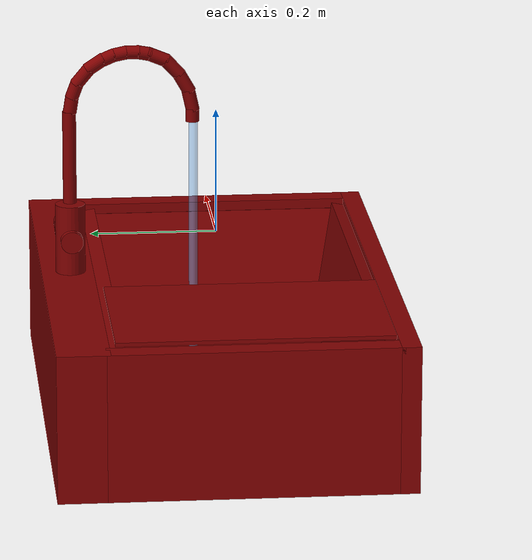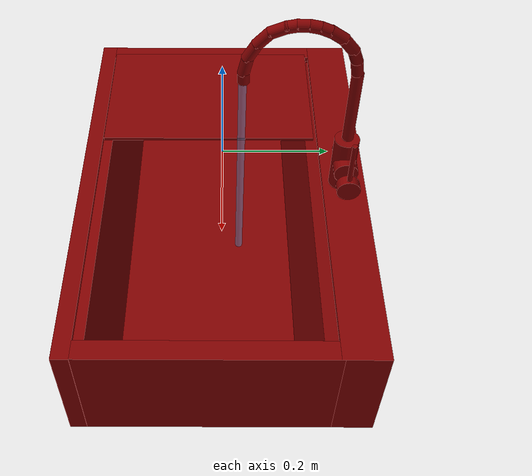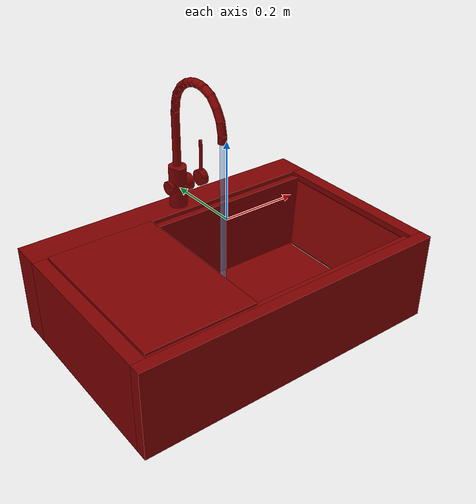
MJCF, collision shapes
<?xml version='1.0' encoding='UTF-8'?>
<mujoco model="model">
  <option timestep="0.002" gravity="0.0 0.0 -9.81"/>
  <compiler angle="radian"/>
  <asset>
    <mesh file="visuals/handle.obj" name="handle_vis"/>
    <mesh file="visuals/Body001.obj" name="Body001_vis"/>
    <mesh file="visuals/Shelf001.obj" name="Shelf001_vis"/>
    <mesh file="visuals/spout.obj" name="spout_vis"/>
    <texture file="visuals/T_BC001.png" name="Body001_material" type="2d"/>
    <material name="Body001_material" rgba="1 1 1 1.0" texture="Body001_material" shininess="0.1" specular="0.9"/>
    <texture file="visuals/T_BC001.png" name="handle_material" type="2d"/>
    <material name="handle_material" rgba="1 1 1 1.0" texture="handle_material" shininess="0.1" specular="0.9"/>
    <texture file="visuals/T_BC001.png" name="Shelf001_material" type="2d"/>
    <material name="Shelf001_material" rgba="1 1 1 1.0" texture="Shelf001_material" shininess="0.1" specular="0.9"/>
    <texture file="visuals/T_BC001.png" name="spout_material" type="2d"/>
    <material name="spout_material" rgba="1 1 1 1.0" texture="spout_material" shininess="0.1" specular="0.9"/>
  </asset>
  <default>
    <default class="visual">
      <geom conaffinity="0" contype="0" group="1" type="mesh"/>
    </default>
    <default class="collision">
      <geom group="0" rgba="0.5 0 0 0.5" solimp="0.998 0.998 0.001" solref="0.001 2"/>
    </default>
    <default class="spawn">
      <geom group="0" rgba="1 1 1 0.5" contype="0" conaffinity="0"/>
      <site group="0" rgba="1 1 1 0.5"/>
    </default>
    <default class="region">
      <geom group="1" conaffinity="0" contype="0" rgba="0 1 0 0"/>
    </default>
  </default>
  <worldbody>
    <body>
      <body name="object">
        <geom mesh="Body001_vis" type="mesh" solimp="0.998 0.998 0.001" solref="0.001 1" friction="0.95 0.3 0.1" class="visual" material="Body001_material"/>
        <geom class="collision" type="cylinder" pos="0.01446781 0.23220078 -0.01140881" size="0.023818261921405792 0.058100372552871704" quat="1.0 0.0 0.0 0.0"/>
        <geom class="collision" type="cylinder" pos="-0.00912876 0.23113279 -0.00875691" size="0.017742056399583817 0.010086488910019398" quat="0.7071068286895752 -0.0 0.7071067690849304 0.0"/>
        <geom class="collision" type="box" pos="0.00031437 -0.26389782 -0.18426010" size="0.4193645417690277 0.015467232093214989 0.11859586834907532" quat="1.0 0.0 0.0 0.0"/>
        <geom class="collision" type="box" pos="-0.00000001 0.23764659 -0.18426025" size="0.41904929280281067 0.04178822040557861 0.11859574168920517" quat="1.0 0.0 0.0 0.0"/>
        <geom class="collision" type="box" pos="-0.40072238 -0.02596472 -0.18426012" size="0.01832764595746994 0.22813750803470612 0.11859551072120667" quat="1.0 0.0 0.0 0.0"/>
        <geom class="collision" type="box" pos="0.40077850 -0.02596472 -0.18426012" size="0.018271489068865776 0.22813750803470612 0.11859557777643204" quat="1.0 0.0 0.0 0.0"/>
        <geom class="collision" type="box" pos="0.00022718 -0.22606264 -0.17819351" size="0.3873293101787567 0.01631571352481842 0.10411051660776138" quat="7.645235911013515e-08 6.835308319352862e-09 -0.09209910780191422 0.995749831199646"/>
        <geom class="collision" type="box" pos="0.00022718 0.17271432 -0.17452004" size="0.3873293101787567 0.017418405041098595 0.10019876807928085" quat="7.620395336971342e-08 -5.913054934580941e-09 0.07906342297792435 0.9968695640563965"/>
        <geom class="collision" type="box" pos="-0.03082826 -0.02596472 -0.27604321" size="0.36546948552131653 0.22813750803470612 0.014513281174004078" quat="1.0 0.0 0.0 0.0"/>
        <geom class="collision" type="box" pos="0.37823457 -0.02596472 -0.17543993" size="0.018271517008543015 0.22813750803470612 0.09256541728973389" quat="0.9945106506347656 4.444838213243647e-16 0.10463552922010422 1.4058707087372113e-08"/>
        <geom class="collision" type="box" pos="-0.38114434 -0.02596472 -0.16789106" size="0.018327679485082626 0.22813750803470612 0.09352923184633255" quat="0.9962621331214905 -2.974396163650674e-16 -0.0863814726471901 -1.16061142918511e-08"/>
        <geom class="collision" type="cylinder" pos="0.03512879 0.23286472 -0.00798832" size="0.02268277481198311 0.017486507073044777" quat="0.7071068286895752 -0.0 0.7071067690849304 0.0"/>
        <body name="handle">
          <joint axis="1.0 0.0 0.0" pos="0.08099219 0.23277400 -0.00819496" limited="true" name="handle_temp_joint" type="hinge" range="-0.7853981633974483 0.7853981633974483" damping="0.5" frictionloss="1" armature="2"/>
          <joint axis="0.0 1.0 0.0" pos="0.08099219 0.23277400 -0.00819496" limited="true" name="handle_joint" type="hinge" range="0 0.5" damping="0.5" frictionloss="1" armature="2"/>
          <geom mesh="handle_vis" type="mesh" solimp="0.998 0.998 0.001" solref="0.001 1" friction="0.95 0.3 0.1" class="visual" material="handle_material"/>
          <geom class="collision" type="cylinder" pos="0.08792080 0.23281470 -0.00806773" size="0.021927855908870697 0.009958228096365929" quat="0.70710688829422 -4.7503021960437763e-08 -0.7071066498756409 -4.750300774958305e-08"/>
          <geom name="handle_main" class="collision" type="cylinder" pos="0.08904275 0.23257366 0.05547520" size="0.004649974871426821 0.04207927733659744" quat="7.549790126404332e-08 0.0 0.0 1.0"/>
        </body>
        <body name="Shelf001">
          <joint axis="0.0 0.0 1.0" pos="-0.24271366 -0.03025551 -0.06430702" limited="true" name="Shelf001_joint" range="0.0 0.1" type="slide" damping="1" frictionloss="1" armature=".01" stiffness="0.05"/>
          <geom mesh="Shelf001_vis" type="mesh" solimp="0.998 0.998 0.001" solref="0.001 1" friction="0.95 0.3 0.1" class="visual" material="Shelf001_material"/>
          <geom class="collision" type="box" pos="-0.24190325 -0.02886014 -0.06051323" size="0.14196902513504028 0.21602289378643036 0.003069335361942649" quat="1.0 0.0 0.0 0.0"/>
        </body>
        <body name="spout">
          <joint axis="0.0 0.0 1.0" pos="0.01468697 0.23264329 0.17445582" limited="true" name="spout_joint" range="-1.0471975511965976 1.0471975511965976" type="hinge" damping="10"/>
          <site type="cylinder" rgba="0.5 0.75 1 0.5" size="0.007177439983934164 0.22816672921180725" pos="0.01486730 0.03502153 -0.04394450" name="water"/>
          <geom mesh="spout_vis" type="mesh" solimp="0.998 0.998 0.001" solref="0.001 1" friction="0.95 0.3 0.1" class="visual" material="spout_material"/>
          <geom class="collision" type="cylinder" pos="0.01453570 0.23241006 0.12438226" size="0.010794290341436863 0.07506126910448074" quat="1.0 0.0 0.0 0.0" name="spout_main"/>
          <geom class="collision" type="cylinder" pos="0.01479855 0.22939001 0.21044513" size="0.010841227136552334 0.012862671166658401" quat="0.9968740940093994 0.0790063813328743 1.7542944038336892e-17 -4.5949226852819725e-24"/>
          <geom class="collision" type="cylinder" pos="0.01449803 0.22368352 0.23338133" size="0.010841227136552334 0.01286267302930355" quat="0.9837262034416199 0.17967408895492554 3.989565878853892e-17 -2.8741391747410816e-24"/>
          <geom class="collision" type="cylinder" pos="0.01449803 0.21100734 0.25529336" size="0.010841227136552334 0.01631930097937584" quat="0.9403983950614929 0.34007471799850464 1.0998129235289522e-16 2.0087690746601152e-17"/>
          <geom class="collision" type="cylinder" pos="0.01449803 0.18956093 0.27549886" size="0.010841227136552334 0.01631930284202099" quat="0.881496250629425 0.47219106554985046 1.2380990592765462e-16 3.0933881461743464e-17"/>
          <geom class="collision" type="cylinder" pos="0.01449803 0.16854144 0.28652972" size="0.010841227136552334 0.01080181635916233" quat="0.8340665698051453 0.5516638159751892 4.176387928921444e-17 2.0189935564268627e-16"/>
          <geom class="collision" type="cylinder" pos="0.01449803 0.15047885 0.29191196" size="0.010841227136552334 0.01080181635916233" quat="0.7745123505592346 0.6325587630271912 3.9877794996030227e-17 1.9278140330751835e-16"/>
          <geom class="collision" type="cylinder" pos="0.01449803 0.13083686 0.29383134" size="0.010841227136552334 0.01080181635916233" quat="0.7095870971679688 0.7046177387237549 3.767462590427484e-17 1.8213058603561616e-16"/>
          <geom class="collision" type="cylinder" pos="0.01449803 0.11207430 0.29194420" size="0.010841227136552334 0.01080181635916233" quat="0.6383018493652344 0.7697861790657043 2.4664484384579504e-17 1.8156852673555373e-16"/>
          <geom class="collision" type="cylinder" pos="0.01449803 0.09182177 0.28540623" size="0.010841227136552334 0.017336048185825348" quat="0.557436466217041 0.8302196264266968 3.211736846879248e-17 1.552649641148657e-16"/>
          <geom class="collision" type="cylinder" pos="0.01449803 0.06763999 0.26822519" size="0.010841227136552334 0.017336048185825348" quat="0.36648058891296387 0.9304257035255432 1.898018358753758e-17 1.3208991768486143e-16"/>
          <geom class="collision" type="cylinder" pos="0.01449803 0.04907648 0.24237054" size="0.010841227136552334 0.017336048185825348" quat="0.25571370124816895 0.9667525291442871 2.0071711271527853e-17 9.703228278919e-17"/>
          <geom class="collision" type="cylinder" pos="0.01449803 0.03924100 0.21380725" size="0.010841227136552334 0.017336048185825348" quat="0.10857351869344711 0.9940884113311768 1.3839806982808472e-17 6.690525314926546e-17"/>
          <geom class="collision" type="cylinder" pos="0.01449803 0.03633268 0.18985478" size="0.010841227136552334 0.010712708346545696" quat="1.0 1.3665806921110431e-33 -6.500693981790527e-17 2.1022070657818602e-17"/>
        </body>
        <geom class="region" name="reg_basin" type="box" pos="0.120486745 -0.024862450000000008 -0.16740106" size="0.216262285 0.16050691 0.09767837"/>
        <geom class="region" name="reg_main" type="box" pos="-4.999999997368221e-09 3.499999999997949e-05 -0.18426012" size="0.42005012500000005 0.28040001999999997 0.11959588000000002"/>
      </body>
    </body>
  </worldbody>
  <actuator>
    <motor name="handle_joint_actuator" joint="handle_joint" gear="10"/>
    <motor name="handle_temp_joint_actuator" joint="handle_temp_joint" gear="10"/>
    <motor name="Shelf001_joint_actuator" joint="Shelf001_joint" gear="10"/>
    <motor name="spout_joint_actuator" joint="spout_joint" gear="10"/>
  </actuator>
</mujoco>
